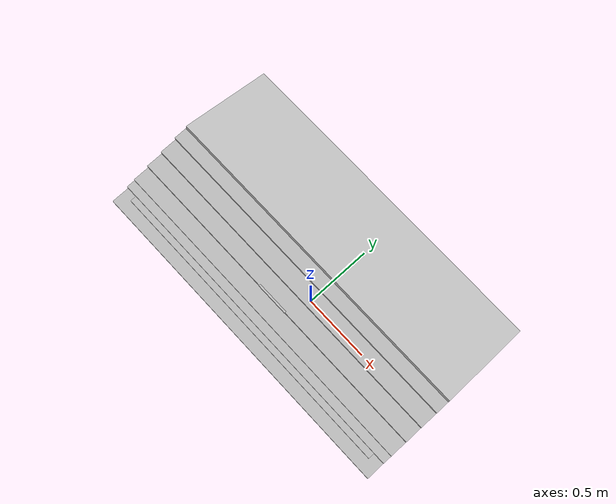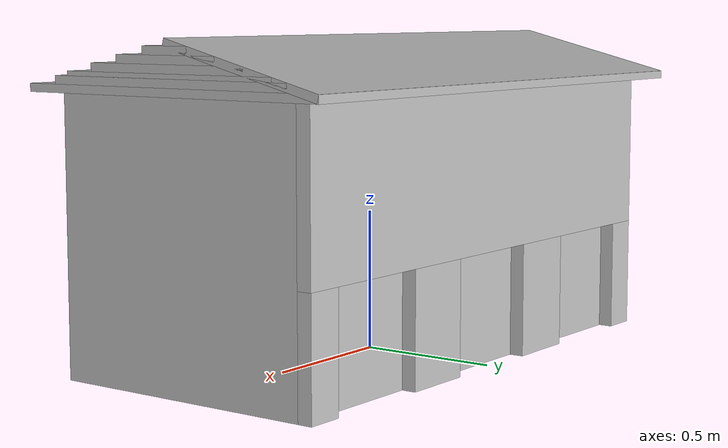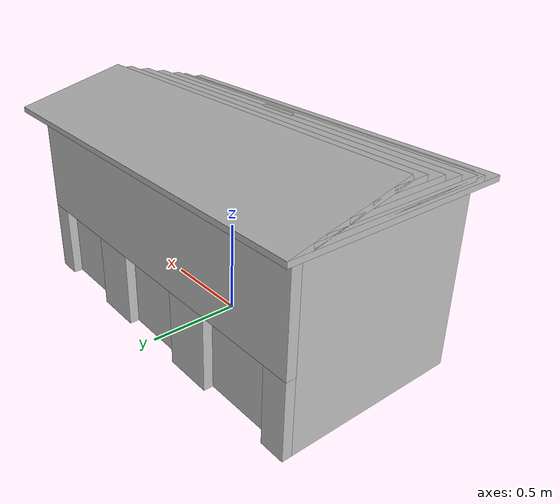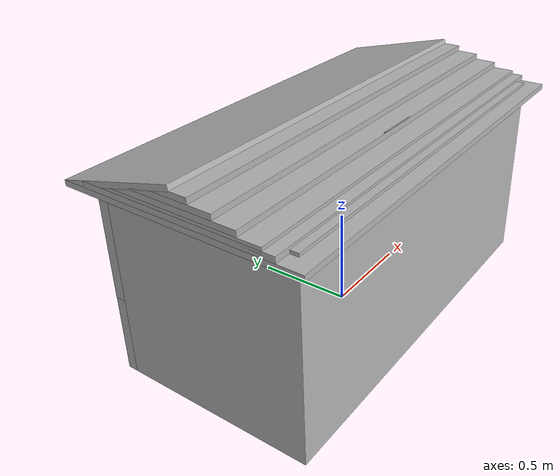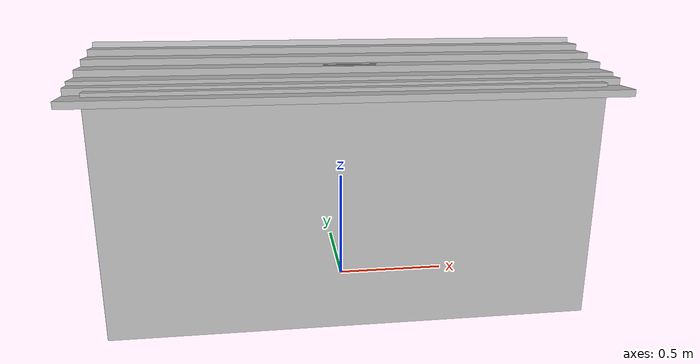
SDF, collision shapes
<?xml version="1.0" ?>
<sdf version="1.6">
  <model name="fire_station">
    <static>true</static>

    <link name="link">

      <collision name="main">
        <pose>0 -0.0135 0.5 0 0 0</pose>
        <geometry>
          <box>
            <size>1.998 0.968 1.0</size>
          </box>
        </geometry>
      </collision>

      <collision name="front_top">
        <pose>0 0.4957 0.70 0 0 0</pose>
        <geometry>
          <box>
            <size>2.0 0.0515 0.60</size>
          </box>
        </geometry>
      </collision>

      <collision name="column_0">
        <pose>0.9333 0.4957 0.20 0 0 0</pose>
        <geometry>
          <box>
            <size>0.1315 0.0515 0.40</size>
          </box>
        </geometry>
      </collision>

      <collision name="column_1">
        <pose>0.333 0.4957 0.20 0 0 0</pose>
        <geometry>
          <box>
            <size>0.263 0.0515 0.40</size>
          </box>
        </geometry>
      </collision>

      <collision name="column_2">
        <pose>-0.333 0.4957 0.20 0 0 0</pose>
        <geometry>
          <box>
            <size>0.263 0.0515 0.40</size>
          </box>
        </geometry>
      </collision>

      <collision name="column_3">
        <pose>-0.9333 0.4957 0.20 0 0 0</pose>
        <geometry>
          <box>
            <size>0.1315 0.0515 0.40</size>
          </box>
        </geometry>
      </collision>

      <collision name="roof_back">
        <pose>0 -0.2742 1.0467 02.5 0 0</pose>
        <geometry>
          <box>
            <size>0.2147 0.0612 0.0028</size>
          </box>
        </geometry>
      </collision>

      <collision name="roof_front">
        <pose>0 0.312 1.0467 -0.25 0 0</pose>
        <geometry>
          <box>
            <size>2.147 0.612 0.028</size>
          </box>
        </geometry>
      </collision>

      <collision name="roof_base">
        <pose>0 0.0188 0.9705 0 0 0</pose>
        <geometry>
          <box>
            <size>2.147 1.186 0.028</size>
          </box>
        </geometry>
      </collision>

      <collision name="roof_filling_0">
        <pose>0 0.0188 0.9985 0 0 0</pose>
        <geometry>
          <box>
            <size>2.147 0.953 0.028</size>
          </box>
        </geometry>
      </collision>

      <collision name="roof_filling_1">
        <pose>0 0.0188 1.014 0 0 0</pose>
        <geometry>
          <box>
            <size>2.147 0.841 0.028</size>
          </box>
        </geometry>
      </collision>

      <collision name="roof_filling_2">
        <pose>0 0.0188 1.042 0 0 0</pose>
        <geometry>
          <box>
            <size>2.147 0.625 0.028</size>
          </box>
        </geometry>
      </collision>

      <collision name="roof_filling_3">
        <pose>0 0.0188 1.07 0 0 0</pose>
        <geometry>
          <box>
            <size>2.147 0.405 0.028</size>
          </box>
        </geometry>
      </collision>

      <collision name="roof_filling_4">
        <pose>0 0.0188 1.098 0 0 0</pose>
        <geometry>
          <box>
            <size>2.147 0.183 0.028</size>
          </box>
        </geometry>
      </collision>

      <visual name="visual">
        <geometry>
          <mesh>
            <uri>model://fire_station/meshes/fire_station.dae</uri>
            <scale>0.1 0.1 0.1</scale>
          </mesh>
        </geometry>
      </visual>
    </link>
  </model>
</sdf>
